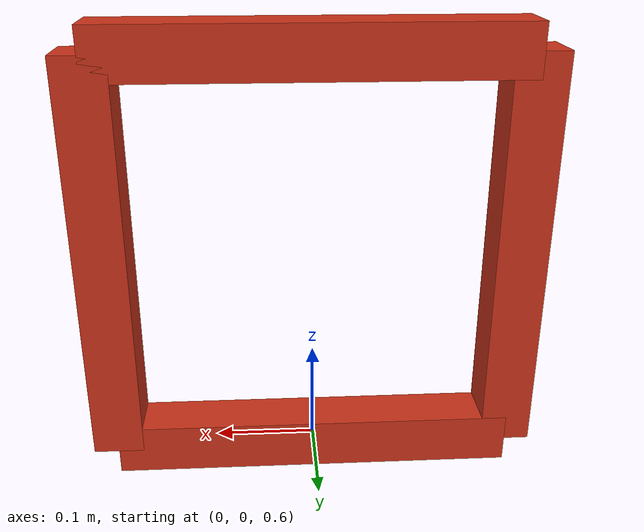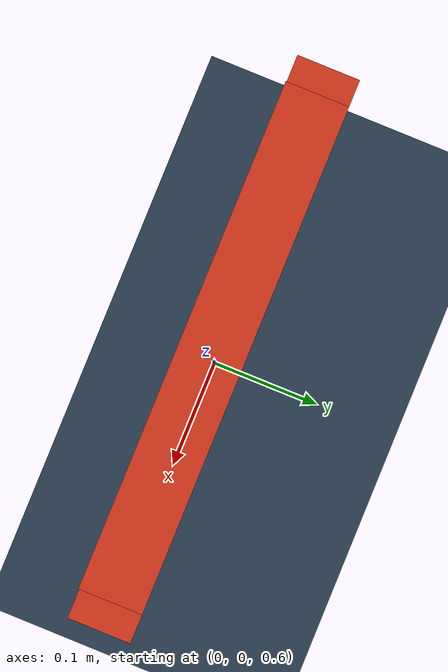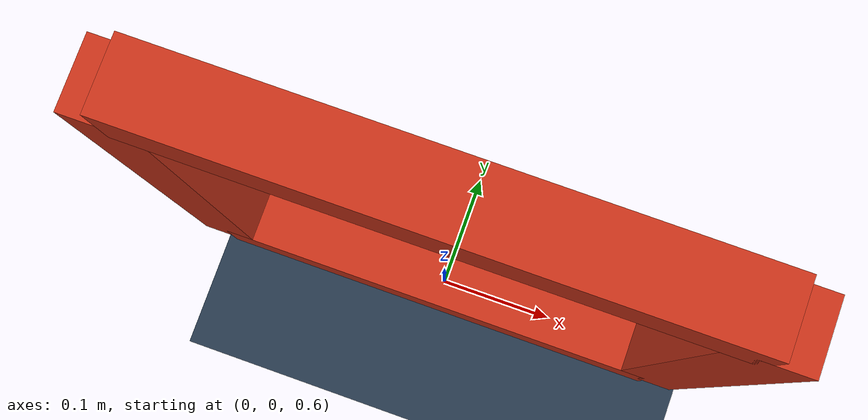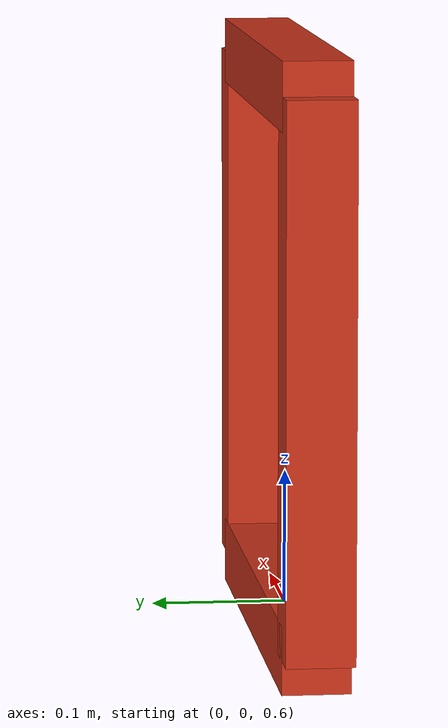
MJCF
<mujoco>
    <default>
        <joint type="hinge" frictionloss="0.1" damping='2' />
        <position ctrllimited="true" ctrlrange="-3.14 3.14" forcelimited="true" forcerange="-50 50" kp="10" />
    </default>

    <asset>
        <texture type="skybox" builtin="gradient" rgb1="0.3 0.5 0.7" rgb2="0 0 0" width="512" height="512" />
        <texture name="texplane" type="2d" builtin="checker" rgb1=".2 .3 .4" rgb2=".1 0.15 0.2" width="512" height="512" mark="cross" markrgb=".8 .8 .8" />

        <material name="matplane" reflectance="0.3" texture="texplane" texrepeat="1 1" texuniform="true" />
    </asset>

    <worldbody>
        <light directional="true" diffuse=".4 .4 .4" specular="0.1 0.1 0.1" pos="0 0 5.0" dir="0 0 -1" castshadow="false" />
        <light directional="true" diffuse=".6 .6 .6" specular="0.2 0.2 0.2" pos="0 0 4" dir="0 0 -1" />

        <geom name="ground" type="plane" size="0 0 1" pos="0 0 0" quat="1 0 0 0" material="matplane" condim="1" />

        <body name="b0" pos="0 0 1">
            <geom type="box" size="0.2 0.025 0.025" rgba=".8 .2 .1 1" />
            <body name="b1" pos="-0.2 0 -0.2" euler="0 90 0">
                <geom type="box" size="0.2 0.025 0.025" rgba=".8 .2 .1 1" />
                <joint name="j0" type="hinge" pos="-0.2 0 0" axis="0 1 0" />
                <body name="b3" pos="0.2 0 0.2" euler="0 -90 0">
                    <geom type="box" size="0.2 0.025 0.025" rgba=".8 .2 .1 1" />
                    <joint name="j3" type="hinge" pos="-0.2 0 0" axis="0 1 0" />
                </body>
            </body>
            <body name="b2" pos="0.2 0 -0.2" euler="0 90 0">
                <geom type="box" size="0.2 0.025 0.025" rgba=".8 .2 .1 1" />
                <joint name="j2" type="hinge" pos="-0.2 0 0" axis="0 1 0" />
            </body>
        </body>
    </worldbody>

    <contact>
        <exclude name="e0" body1="b0" body2="b1" />
        <exclude name="e1" body1="b0" body2="b2" />
        <exclude name="e2" body1="b3" body2="b2" />
    </contact>

    <equality>
        <connect name="c1" body1="b2" body2="b3" anchor="0.2 0 0" />
    </equality>

    <actuator>
        <position joint="j0" ctrllimited="true" ctrlrange="-0.875 0.875" />
        <position joint="j2" ctrllimited="true" ctrlrange="-0.875 0.875" />
        <position joint="j3" ctrllimited="true" ctrlrange="-0.875 0.875" />
    </actuator>
</mujoco>
